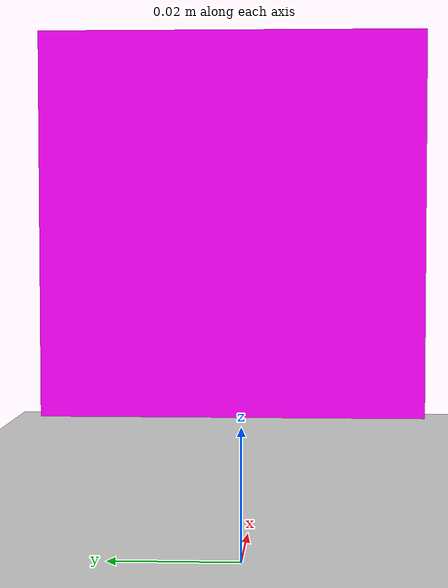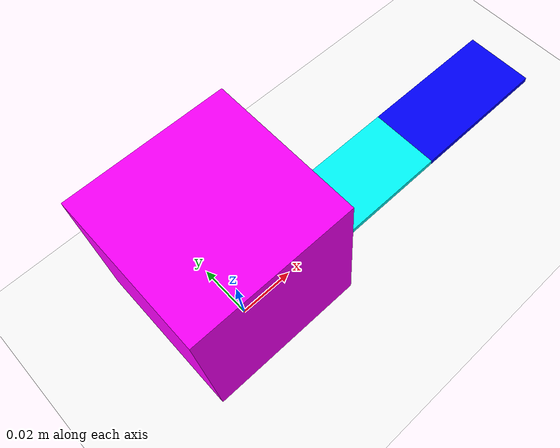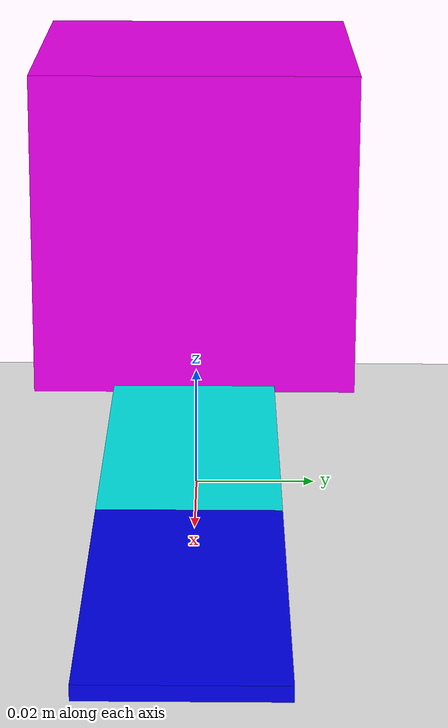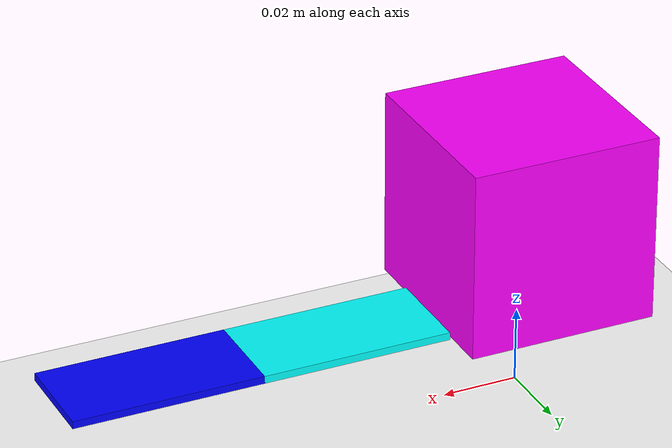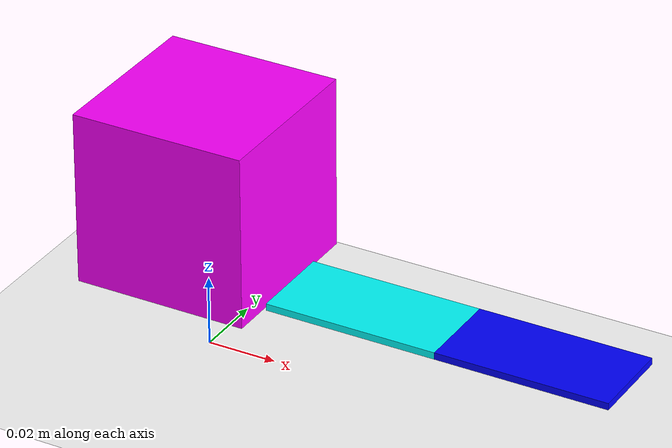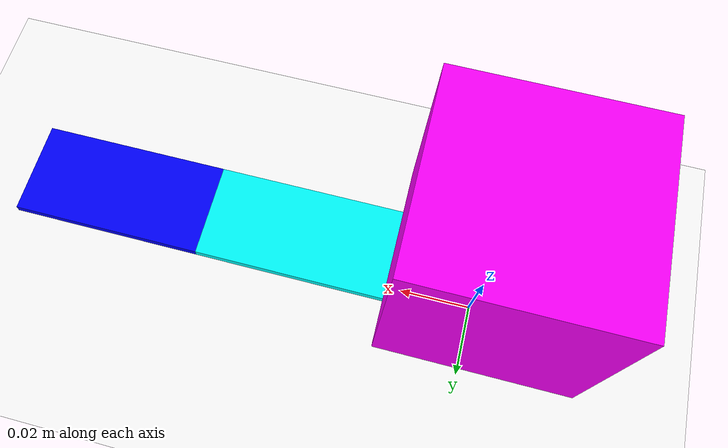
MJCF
<mujoco>
    <option><flag gravity="enable" contact="enable" /></option>
    <option timestep="1e-4"/>
    <compiler angle="degree" />

    <default>
        <geom contype="1" conaffinity="1" condim="3" friction=".6 .3 .3" solimp=".999 .999 .001" solref=".001 1" margin="0.001" group="0"/>
    </default>

    <worldbody>
        <light name="top" pos="0 0 3"/>

        <!-- Main body -->
        <body name="body_1" pos="0 0 0.05">
            <joint name="prismatic_1" type="slide" axis="0 0 1" pos="0 0 0"/>
            <geom type="box" size="0.025 0.025 0.025" pos="0 0 0" rgba="1 0 1 1" mass="0.01"/>

            <!-- First leg attached to the main body -->
            <body name="leg_1" pos="0.025 0 -0.025">
                <joint name="joint_1" type="hinge" axis="0 1 0" pos="0 0 0" limited="true" range="0 180"/>
                <geom type="box" size="0.025 0.0125 0.001" pos="0.025 0 0" rgba="0 1 1 1" mass="0.001"/>

                <!-- Second leg attached to the first leg -->
                <body name="leg_2" pos="0.05 0 0">
                    <joint name="joint_2" type="hinge" axis="0 1 0" pos="0 0 0" stiffness="1" damping="0.01"/>
                    <geom type="box" size="0.025 0.0125 0.001"  pos="0.025 0 0" rgba="0 0 1 1" mass="0.001"/>
                </body>
            </body>
        </body>

        <!-- Floor plane -->
        <body name="floor" pos="0 0 0">
            <geom pos="0 0 0" size="1 1 0.05" type="plane" rgba="1 1 1 1"/>
        </body>
    </worldbody>

    <contact>
        <exclude body1="body_1" body2="leg_1" />
        <exclude body1="leg_1" body2="leg_2" />
    </contact>

    <actuator>
        <motor name="motor_1" joint="joint_1"/>
    </actuator>

    <sensor>
        <framepos name="body_pos" objtype="body" objname="body_1"/>
    </sensor>
</mujoco>
